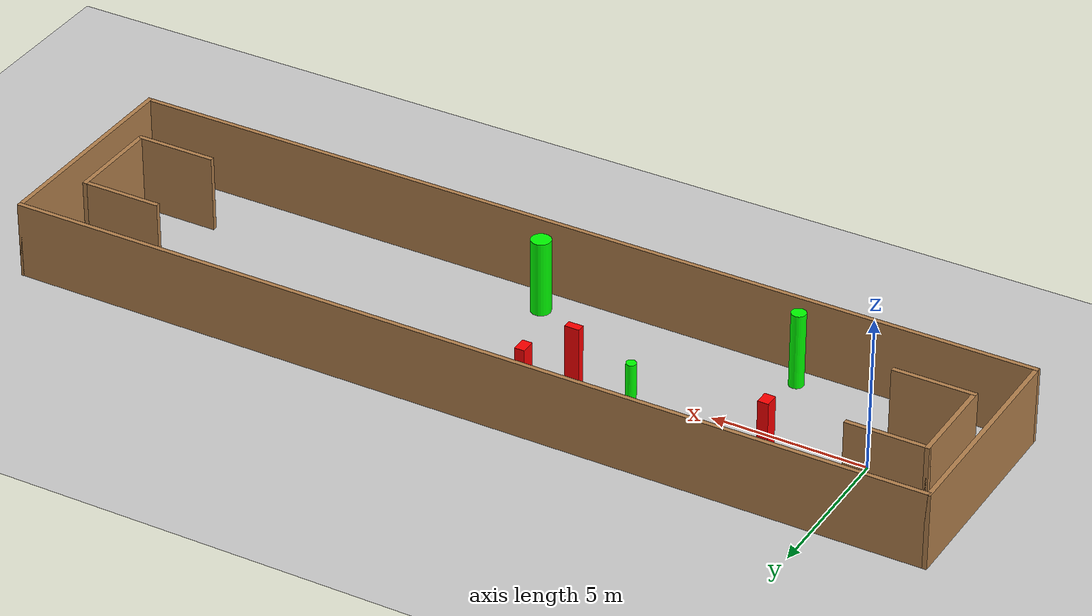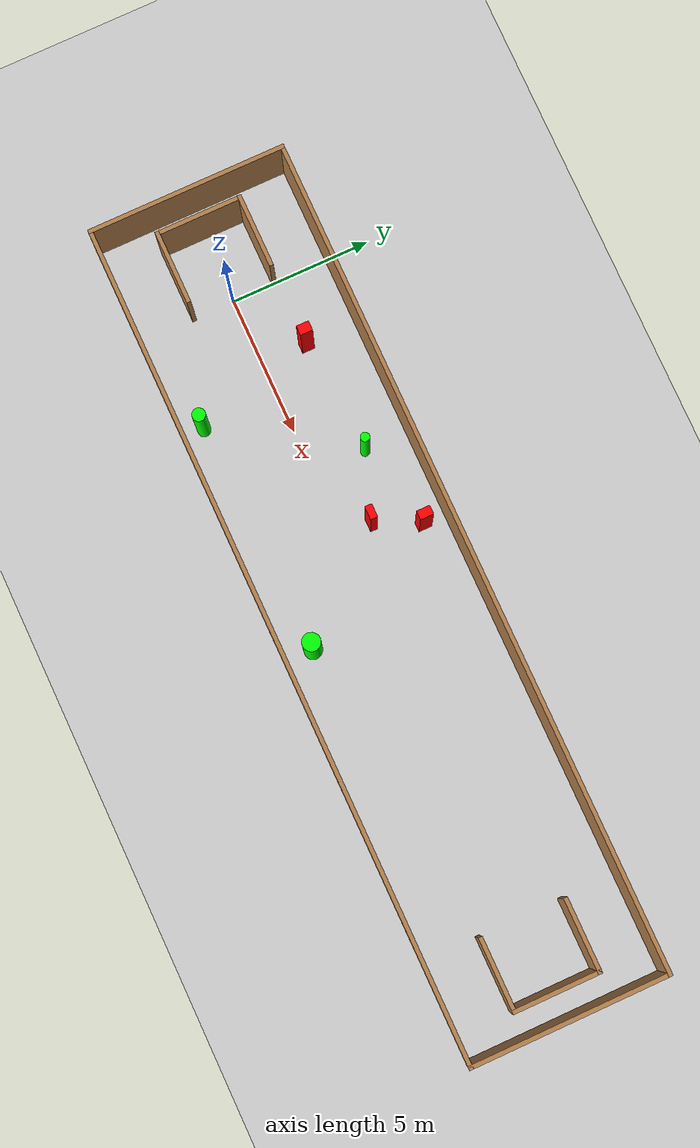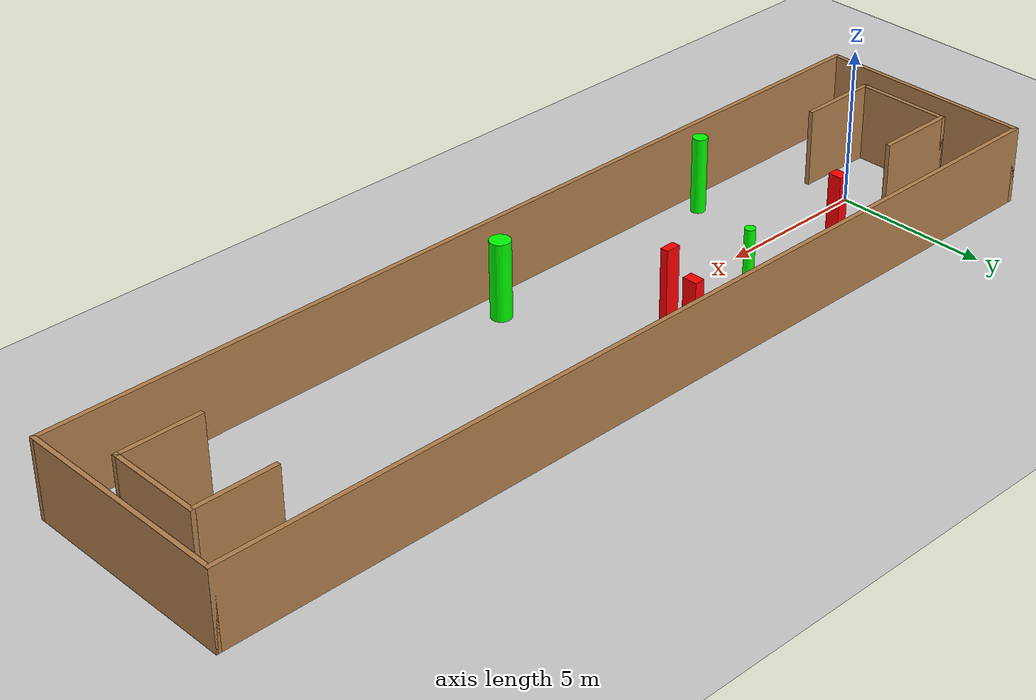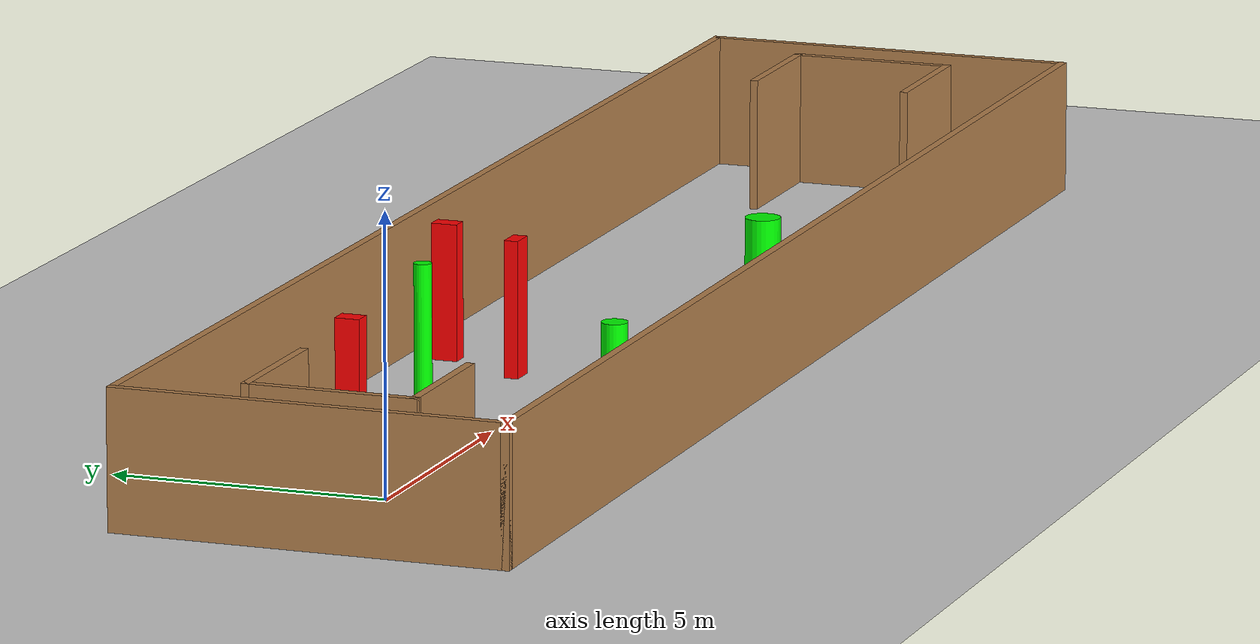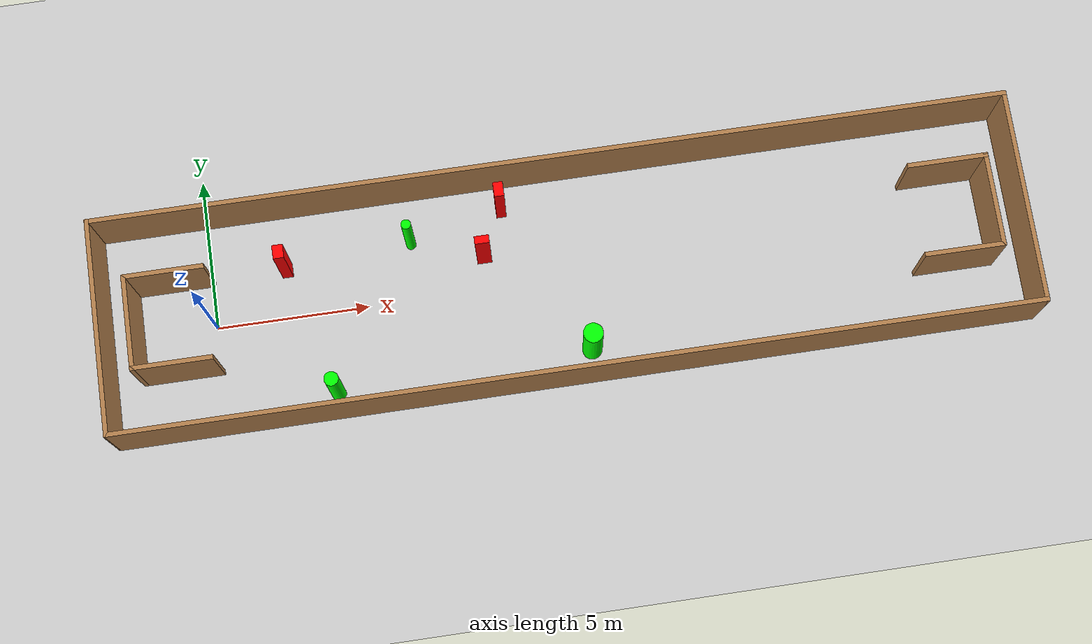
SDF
<sdf version="1.7">
 <world name="default">
  <light name="sun" type="directional">
   <pose>0 0 10 0 -0 0</pose>
   <diffuse>0.8 0.8 0.8 1</diffuse>
   <specular>0.2 0.2 0.2 1</specular>
   <attenuation>
    <range>1000</range>
    <constant>0.9</constant>
    <linear>0.01</linear>
    <quadratic>0.001</quadratic>
   </attenuation>
   <direction>-0.5 0.1 -0.9</direction>
   <spot><inner_angle>0</inner_angle><outer_angle>0</outer_angle><falloff>0</falloff></spot>
  </light>
  <model name="ground_plane">
   <static>1</static>
   <link name="link">
    <collision name="collision">
     <geometry><plane><normal>0 0 1</normal><size>100 100</size></plane></geometry>
     <surface>
      <contact><collide_bitmask>65535</collide_bitmask></contact>
      <friction><ode><mu>100</mu><mu2>50</mu2></ode></friction>
     </surface>
    </collision>
    <visual name="visual">
     <cast_shadows>0</cast_shadows>
     <geometry><plane><normal>0 0 1</normal><size>100 100</size></plane></geometry>
     <material>
      <script><uri>file://media/materials/scripts/gazebo.material</uri><name>Gazebo/Grey</name></script>
     </material>
    </visual>
   </link>
  </model>
  <gravity>0 0 -9.8</gravity>
  <magnetic_field>6e-06 2.3e-05 -4.2e-05</magnetic_field>
  <atmosphere type="adiabatic"/>
  <physics type="ode">
   <max_step_size>0.001</max_step_size>
   <real_time_factor>1</real_time_factor>
   <real_time_update_rate>1000</real_time_update_rate>
  </physics>
  <scene><ambient>0.4 0.4 0.4 1</ambient><background>0.7 0.7 0.7 1</background><shadows>1</shadows></scene>
  <spherical_coordinates>
   <surface_model>EARTH_WGS84</surface_model>
   <latitude_deg>0</latitude_deg>
   <longitude_deg>0</longitude_deg>
   <elevation>0</elevation>
   <heading_deg>0</heading_deg>
  </spherical_coordinates>
  <model name="my_base_walls">
   <link name="Wall_0">
    <collision name="Wall_0_Collision">
     <geometry><box><size>7.15 0.15 2.5</size></box></geometry>
     <pose>0 0 1.25 0 -0 0</pose>
    </collision>
    <visual name="Wall_0_Visual">
     <pose>0 0 1.25 0 -0 0</pose>
     <geometry><box><size>7.15 0.15 2.5</size></box></geometry>
     <material>
      <script><uri>file://media/materials/scripts/gazebo.material</uri><name>Gazebo/Wood</name></script>
      <ambient>1 1 1 1</ambient>
     </material>
     <meta><layer>0</layer></meta>
    </visual>
    <pose>-15 0 0 0 -0 1.5708</pose>
   </link>
   <link name="Wall_10">
    <collision name="Wall_10_Collision">
     <geometry><box><size>2.65 0.15 2.5</size></box></geometry>
     <pose>0 0 1.25 0 -0 0</pose>
    </collision>
    <visual name="Wall_10_Visual">
     <pose>0 0 1.25 0 -0 0</pose>
     <geometry><box><size>2.65 0.15 2.5</size></box></geometry>
     <material>
      <script><uri>file://media/materials/scripts/gazebo.material</uri><name>Gazebo/Wood</name></script>
      <ambient>1 1 1 1</ambient>
     </material>
     <meta><layer>0</layer></meta>
    </visual>
    <pose>-12.75 -1.5 0 0 -0 0</pose>
   </link>
   <link name="Wall_12">
    <collision name="Wall_12_Collision">
     <geometry><box><size>2.65 0.15 2.5</size></box></geometry>
     <pose>0 0 1.25 0 -0 0</pose>
    </collision>
    <visual name="Wall_12_Visual">
     <pose>0 0 1.25 0 -0 0</pose>
     <geometry><box><size>2.65 0.15 2.5</size></box></geometry>
     <material>
      <script><uri>file://media/materials/scripts/gazebo.material</uri><name>Gazebo/Wood</name></script>
      <ambient>1 1 1 1</ambient>
     </material>
     <meta><layer>0</layer></meta>
    </visual>
    <pose>-12.75 1.5 0 0 -0 0</pose>
   </link>
   <link name="Wall_14">
    <collision name="Wall_14_Collision">
     <geometry><box><size>3.15 0.15 2.5</size></box></geometry>
     <pose>0 0 1.25 0 -0 0</pose>
    </collision>
    <visual name="Wall_14_Visual">
     <pose>0 0 1.25 0 -0 0</pose>
     <geometry><box><size>3.15 0.15 2.5</size></box></geometry>
     <material>
      <script><uri>file://media/materials/scripts/gazebo.material</uri><name>Gazebo/Wood</name></script>
      <ambient>1 1 1 1</ambient>
     </material>
     <meta><layer>0</layer></meta>
    </visual>
    <pose>14 0 0 0 -0 -1.5708</pose>
   </link>
   <link name="Wall_15">
    <collision name="Wall_15_Collision">
     <geometry><box><size>2.65 0.15 2.5</size></box></geometry>
     <pose>0 0 1.25 0 -0 0</pose>
    </collision>
    <visual name="Wall_15_Visual">
     <pose>0 0 1.25 0 -0 0</pose>
     <geometry><box><size>2.65 0.15 2.5</size></box></geometry>
     <material>
      <script><uri>file://media/materials/scripts/gazebo.material</uri><name>Gazebo/Wood</name></script>
      <ambient>1 1 1 1</ambient>
     </material>
     <meta><layer>0</layer></meta>
    </visual>
    <pose>12.75 -1.5 0 0 -0 3.14159</pose>
   </link>
   <link name="Wall_17">
    <collision name="Wall_17_Collision">
     <geometry><box><size>2.65 0.15 2.5</size></box></geometry>
     <pose>0 0 1.25 0 -0 0</pose>
    </collision>
    <visual name="Wall_17_Visual">
     <pose>0 0 1.25 0 -0 0</pose>
     <geometry><box><size>2.65 0.15 2.5</size></box></geometry>
     <material>
      <script><uri>file://media/materials/scripts/gazebo.material</uri><name>Gazebo/Wood</name></script>
      <ambient>1 1 1 1</ambient>
     </material>
     <meta><layer>0</layer></meta>
    </visual>
    <pose>12.75 1.5 0 0 -0 3.14159</pose>
   </link>
   <link name="Wall_2">
    <collision name="Wall_2_Collision">
     <geometry><box><size>30.15 0.15 2.5</size></box></geometry>
     <pose>0 0 1.25 0 -0 0</pose>
    </collision>
    <visual name="Wall_2_Visual">
     <pose>0 0 1.25 0 -0 0</pose>
     <geometry><box><size>30.15 0.15 2.5</size></box></geometry>
     <material>
      <script><uri>file://media/materials/scripts/gazebo.material</uri><name>Gazebo/Wood</name></script>
      <ambient>1 1 1 1</ambient>
     </material>
     <meta><layer>0</layer></meta>
    </visual>
    <pose>-0 -3.5 0 0 -0 0</pose>
   </link>
   <link name="Wall_4">
    <collision name="Wall_4_Collision">
     <geometry><box><size>30.15 0.15 2.5</size></box></geometry>
     <pose>0 0 1.25 0 -0 0</pose>
    </collision>
    <visual name="Wall_4_Visual">
     <pose>0 0 1.25 0 -0 0</pose>
     <geometry><box><size>30.15 0.15 2.5</size></box></geometry>
     <material>
      <script><uri>file://media/materials/scripts/gazebo.material</uri><name>Gazebo/Wood</name></script>
      <ambient>1 1 1 1</ambient>
     </material>
     <meta><layer>0</layer></meta>
    </visual>
    <pose>-0 3.5 0 0 -0 0</pose>
   </link>
   <link name="Wall_6">
    <collision name="Wall_6_Collision">
     <geometry><box><size>7.15 0.15 2.5</size></box></geometry>
     <pose>0 0 1.25 0 -0 0</pose>
    </collision>
    <visual name="Wall_6_Visual">
     <pose>0 0 1.25 0 -0 0</pose>
     <geometry><box><size>7.15 0.15 2.5</size></box></geometry>
     <material>
      <script><uri>file://media/materials/scripts/gazebo.material</uri><name>Gazebo/Wood</name></script>
      <ambient>1 1 1 1</ambient>
     </material>
     <meta><layer>0</layer></meta>
    </visual>
    <pose>15 0 0 0 -0 -1.5708</pose>
   </link>
   <link name="Wall_9">
    <collision name="Wall_9_Collision">
     <geometry><box><size>3.15 0.15 2.5</size></box></geometry>
     <pose>0 0 1.25 0 -0 0</pose>
    </collision>
    <visual name="Wall_9_Visual">
     <pose>0 0 1.25 0 -0 0</pose>
     <geometry><box><size>3.15 0.15 2.5</size></box></geometry>
     <material>
      <script><uri>file://media/materials/scripts/gazebo.material</uri><name>Gazebo/Wood</name></script>
      <ambient>1 1 1 1</ambient>
     </material>
     <meta><layer>0</layer></meta>
    </visual>
    <pose>-14 0 0 0 -0 -1.5708</pose>
   </link>
   <static>1</static>
   <pose>11.5 0 0 0 -0 0</pose>
  </model>
  <model name="cylinder1">
   <static>1</static>
   <link name="link">
    <inertial>
     <mass>1</mass>
     <inertia><ixx>0.5</ixx><ixy>0</ixy><ixz>0</ixz><iyy>0.5</iyy><iyz>0</iyz><izz>1</izz></inertia>
    </inertial>
    <collision name="collision">
     <geometry><cylinder><radius>0.3222958715769955</radius><length>2.5</length></cylinder></geometry>
    </collision>
    <visual name="visual">
     <geometry><cylinder><radius>0.3222958715769955</radius><length>2.5</length></cylinder></geometry>
     <material>
      <ambient>0 1 0 1</ambient>
      <diffuse>0 1 0 1</diffuse>
      <specular>0.1 0.1 0.1 1</specular>
      <emissive>0 0 0 0</emissive>
     </material>
    </visual>
   </link>
   <pose>12.059107920233895 -2.4902238223212114 1.25 0 0 0</pose>
  </model>
  <model name="cylinder2">
   <static>1</static>
   <link name="link">
    <inertial>
     <mass>1</mass>
     <inertia><ixx>0.5</ixx><ixy>0</ixy><ixz>0</ixz><iyy>0.5</iyy><iyz>0</iyz><izz>1</izz></inertia>
    </inertial>
    <collision name="collision">
     <geometry><cylinder><radius>0.16255040693895675</radius><length>2.5</length></cylinder></geometry>
    </collision>
    <visual name="visual">
     <geometry><cylinder><radius>0.16255040693895675</radius><length>2.5</length></cylinder></geometry>
     <material>
      <ambient>0 1 0 1</ambient>
      <diffuse>0 1 0 1</diffuse>
      <specular>0.1 0.1 0.1 1</specular>
      <emissive>0 0 0 0</emissive>
     </material>
    </visual>
   </link>
   <pose>6.633214685638688 1.910061583077237 1.25 0 0 0</pose>
  </model>
  <model name="cylinder3">
   <static>1</static>
   <link name="link">
    <inertial>
     <mass>1</mass>
     <inertia><ixx>0.5</ixx><ixy>0</ixy><ixz>0</ixz><iyy>0.5</iyy><iyz>0</iyz><izz>1</izz></inertia>
    </inertial>
    <collision name="collision">
     <geometry><cylinder><radius>0.23436155360348204</radius><length>2.5</length></cylinder></geometry>
    </collision>
    <visual name="visual">
     <geometry><cylinder><radius>0.23436155360348204</radius><length>2.5</length></cylinder></geometry>
     <material>
      <ambient>0 1 0 1</ambient>
      <diffuse>0 1 0 1</diffuse>
      <specular>0.1 0.1 0.1 1</specular>
      <emissive>0 0 0 0</emissive>
     </material>
    </visual>
   </link>
   <pose>3.674348504127286 -2.750869580251214 1.25 0 0 0</pose>
  </model>
  <model name="box1">
   <static>1</static>
   <link name="link">
    <inertial>
     <mass>1</mass>
     <inertia><ixx>0.083</ixx><ixy>0</ixy><ixz>0</ixz><iyy>0.083</iyy><iyz>0</iyz><izz>0.083</izz></inertia>
    </inertial>
    <collision name="collision">
     <geometry><box><size>0.47981310976986813 0.2586535496973954 2.5</size></box></geometry>
    </collision>
    <visual name="visual">
     <geometry><box><size>0.47981310976986813 0.2586535496973954 2.5</size></box></geometry>
     <material>
      <ambient>1 0 0 1</ambient>
      <diffuse>1 0 0 1</diffuse>
      <specular>0.1 0.1 0.1 1</specular>
      <emissive>0 0 0 0</emissive>
     </material>
    </visual>
    <sensor name="my_contact" type="contact">
     <contact><collision>box_collision</collision><topic>__default_topic__</topic></contact>
    </sensor>
   </link>
   <pose>8.973252516515009 1.0590733397602952 1.25 0 0 0</pose>
  </model>
  <model name="box2">
   <static>1</static>
   <link name="link">
    <inertial>
     <mass>1</mass>
     <inertia><ixx>0.083</ixx><ixy>0</ixy><ixz>0</ixz><iyy>0.083</iyy><iyz>0</iyz><izz>0.083</izz></inertia>
    </inertial>
    <collision name="collision">
     <geometry><box><size>0.3488187492298698 0.4463134375435378 2.5</size></box></geometry>
    </collision>
    <visual name="visual">
     <geometry><box><size>0.3488187492298698 0.4463134375435378 2.5</size></box></geometry>
     <material>
      <ambient>1 0 0 1</ambient>
      <diffuse>1 0 0 1</diffuse>
      <specular>0.1 0.1 0.1 1</specular>
      <emissive>0 0 0 0</emissive>
     </material>
    </visual>
    <sensor name="my_contact" type="contact">
     <contact><collision>box_collision</collision><topic>__default_topic__</topic></contact>
    </sensor>
   </link>
   <pose>2.468243098631495 1.6133334549280773 1.25 0 0 0</pose>
  </model>
  <model name="box3">
   <static>1</static>
   <link name="link">
    <inertial>
     <mass>1</mass>
     <inertia><ixx>0.083</ixx><ixy>0</ixy><ixz>0</ixz><iyy>0.083</iyy><iyz>0</iyz><izz>0.083</izz></inertia>
    </inertial>
    <collision name="collision">
     <geometry><box><size>0.32275895157839707 0.47852358372850784 2.5</size></box></geometry>
    </collision>
    <visual name="visual">
     <geometry><box><size>0.32275895157839707 0.47852358372850784 2.5</size></box></geometry>
     <material>
      <ambient>1 0 0 1</ambient>
      <diffuse>1 0 0 1</diffuse>
      <specular>0.1 0.1 0.1 1</specular>
      <emissive>0 0 0 0</emissive>
     </material>
    </visual>
    <sensor name="my_contact" type="contact">
     <contact><collision>box_collision</collision><topic>__default_topic__</topic></contact>
    </sensor>
   </link>
   <pose>9.733442279392172 2.65114195532602 1.25 0 0 0</pose>
  </model>
 </world>
</sdf>
